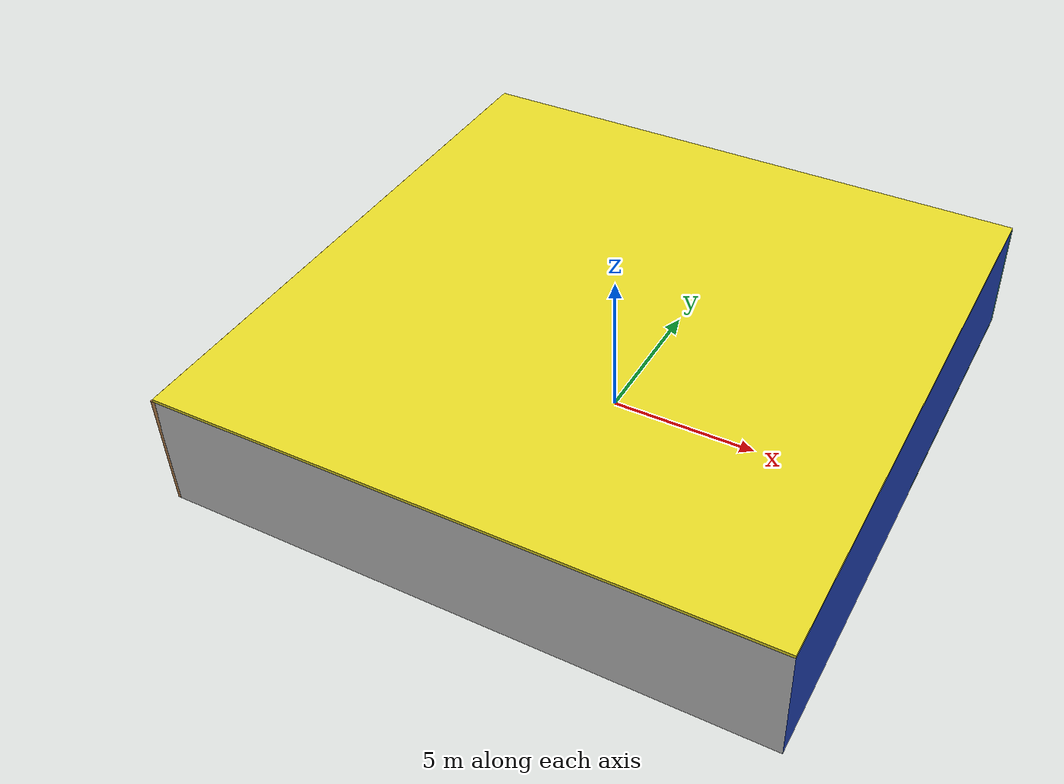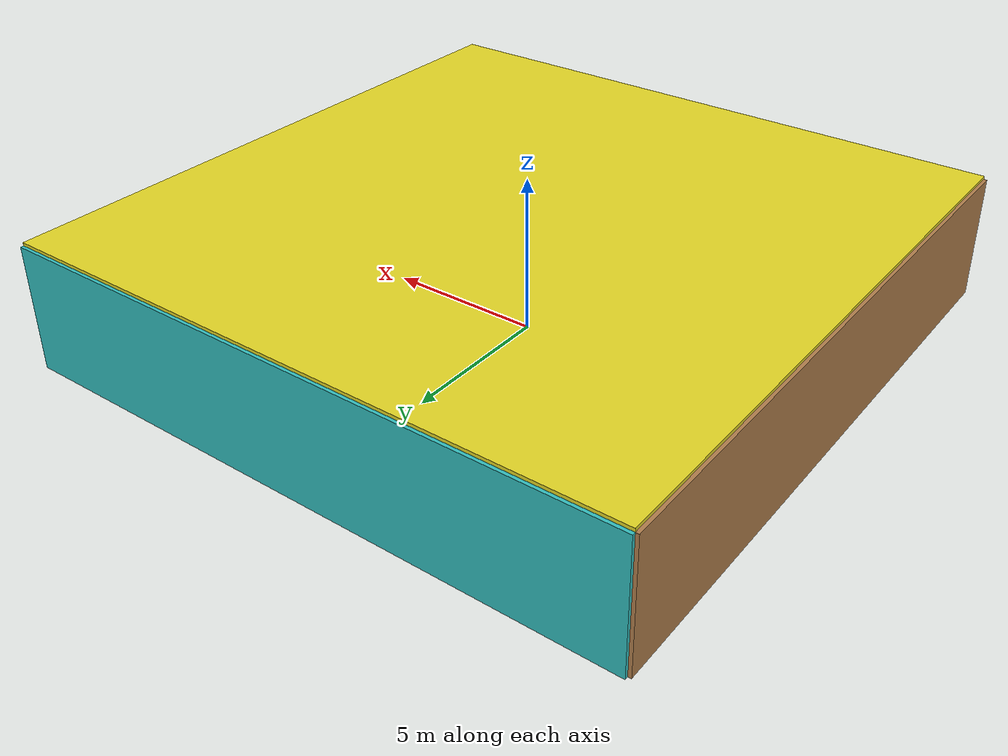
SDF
<sdf version="1.4">
 <world name="default">
  <physics type="ode">
   <max_step_size>0.001</max_step_size>
   <real_time_factor>1</real_time_factor>
   <real_time_update_rate>1000</real_time_update_rate>
   <gravity>0 0 -9.8</gravity>
  </physics>
  <scene><ambient>0.4 0.4 0.4 1</ambient><background>0.7 0.7 0.7 1</background><shadows>1</shadows></scene>
  <model name="Surrounding">
   <static>1</static>
   <link name="Ceiling">
    <collision name="Ceiling_Collision"><geometry><box><size>20 20 0.1</size></box></geometry></collision>
    <visual name="Ceiling_Visual">
     <geometry><box><size>20 20 0.1</size></box></geometry>
     <material>
      <script><uri>file://media/materials/scripts/gazebo.material</uri><name>Gazebo/Yellow</name></script>
     </material>
    </visual>
    <pose>0 0 4.05 0 0 0</pose>
   </link>
   <link name="Wall_South">
    <collision name="Wall_South_Collision">
     <geometry><box><size>20 0 4</size></box></geometry>
     <pose>0 0 2 0 -0 0</pose>
    </collision>
    <visual name="Wall_South_Visual">
     <pose>0 0 2 0 -0 0</pose>
     <geometry><box><size>20 0 4</size></box></geometry>
     <material>
      <script><uri>file://media/materials/scripts/gazebo.material</uri><name>Gazebo/LightOn</name></script>
     </material>
    </visual>
    <velocity_decay><linear>0</linear><angular>0</angular></velocity_decay>
    <pose>0 -10 0 0 -0 0</pose>
   </link>
   <link name="Wall_East">
    <collision name="Wall_21_Collision">
     <geometry><box><size>20 0 4</size></box></geometry>
     <pose>0 0 2 0 -0 0</pose>
    </collision>
    <visual name="Wall_21_Visual">
     <pose>0 0 2 0 -0 0</pose>
     <geometry><box><size>20 0 4</size></box></geometry>
     <material>
      <script><uri>file://media/materials/scripts/gazebo.material</uri><name>Gazebo/Blue</name></script>
     </material>
    </visual>
    <velocity_decay><linear>0</linear><angular>0</angular></velocity_decay>
    <pose>10 0 0 0 -0 1.5708</pose>
   </link>
   <link name="Wall_North">
    <collision name="Wall_22_Collision">
     <geometry><box><size>20 0.2 4</size></box></geometry>
     <pose>0 0 2 0 -0 0</pose>
    </collision>
    <visual name="Wall_22_Visual">
     <pose>0 0 2 0 -0 0</pose>
     <geometry><box><size>20 0.2 4</size></box></geometry>
     <material>
      <script><uri>file://media/materials/scripts/gazebo.material</uri><name>Gazebo/TurquoiseGlow</name></script>
     </material>
    </visual>
    <velocity_decay><linear>0</linear><angular>0</angular></velocity_decay>
    <pose>0 10 0 0 -0 0</pose>
   </link>
   <link name="Wall_West">
    <collision name="Wall_23_Collision">
     <geometry><box><size>20 0.2 4</size></box></geometry>
     <pose>0 0 2 0 -0 0</pose>
    </collision>
    <visual name="Wall_23_Visual">
     <pose>0 0 2 0 -0 0</pose>
     <geometry><box><size>20 0.2 4</size></box></geometry>
     <material>
      <script><uri>file://media/materials/scripts/gazebo.material</uri><name>Gazebo/Wood</name></script>
     </material>
    </visual>
    <velocity_decay><linear>0</linear><angular>0</angular></velocity_decay>
    <pose>-10 0 0 0 0 -1.5708</pose>
   </link>
   <link name="Ground_link">
    <collision name="collision">
     <pose>0 0 .05 0 -0 0</pose>
     <geometry><box><size>20 20 0.1</size></box></geometry>
    </collision>
    <visual name="visual">
     <pose>0 0 .05 0 -0 0</pose>
     <geometry><box><size>20 20 0.1</size></box></geometry>
     <material>
      <script><uri>file://media/materials/scripts/gazebo.material</uri><name>Gazebo/GreenTransparent</name></script>
     </material>
    </visual>
   </link>
   <static>1</static>
  </model>
  <spherical_coordinates>
   <surface_model>EARTH_WGS84</surface_model>
   <latitude_deg>0</latitude_deg>
   <longitude_deg>0</longitude_deg>
   <elevation>0</elevation>
   <heading_deg>0</heading_deg>
  </spherical_coordinates>
  <light name="lightball_0" type="diffuse">
   <diffuse>0.8 0.8 0.8 1</diffuse>
   <specular>0.2 0.2 0.2 1</specular>
   <attenuation>
    <range>100</range>
    <constant>0.7</constant>
    <linear>0.01</linear>
    <quadratic>0.001</quadratic>
   </attenuation>
   <direction>-0.5 0.1 -0.9</direction>
   <pose>-8.38035545458 -2.27887581887 1.6768939226 0 0 0</pose>
  </light>
  <light name="lightball_1" type="diffuse">
   <diffuse>0.8 0.8 0.8 1</diffuse>
   <specular>0.2 0.2 0.2 1</specular>
   <attenuation>
    <range>100</range>
    <constant>0.7</constant>
    <linear>0.01</linear>
    <quadratic>0.001</quadratic>
   </attenuation>
   <direction>-0.5 0.1 -0.9</direction>
   <pose>7.75335989374 3.12265583042 3.45151004831 0 0 0</pose>
  </light>
  <light name="lightball_2" type="diffuse">
   <diffuse>0.8 0.8 0.8 1</diffuse>
   <specular>0.2 0.2 0.2 1</specular>
   <attenuation>
    <range>100</range>
    <constant>0.7</constant>
    <linear>0.01</linear>
    <quadratic>0.001</quadratic>
   </attenuation>
   <direction>-0.5 0.1 -0.9</direction>
   <pose>1.21892426313 -1.73992439381 3.54033984625 0 0 0</pose>
  </light>
  <light name="lightball_3" type="diffuse">
   <diffuse>0.8 0.8 0.8 1</diffuse>
   <specular>0.2 0.2 0.2 1</specular>
   <attenuation>
    <range>100</range>
    <constant>0.7</constant>
    <linear>0.01</linear>
    <quadratic>0.001</quadratic>
   </attenuation>
   <direction>-0.5 0.1 -0.9</direction>
   <pose>-1.10424686926 -4.79500727787 0.569668915004 0 0 0</pose>
  </light>
  <include><uri>model://cabinet</uri><pose>-7.75802491182 1.01468261508 0 0 0 1.5812449388</pose></include>
  <include><uri>model://cabinet</uri><pose>-3.83750837893 5.28467872527 0 0 0 1.65612954965</pose></include>
  <include>
   <uri>model://robocup_3Dsim_goal</uri>
   <pose>-1.28654535139 -7.21269855393 0 0 0 1.80942768447</pose>
  </include>
  <include>
   <uri>model://construction_cone</uri>
   <pose>-1.28326208532 4.94188858092 0 0 0 2.96699885351</pose>
  </include>
  <include>
   <uri>model://robocup_3Dsim_goal</uri>
   <pose>-1.61846144014 7.19751092973 0 0 0 0.0317638535593</pose>
  </include>
  <include>
   <uri>model://robocup_3Dsim_goal</uri>
   <pose>4.07285715866 -7.72283824052 0 0 0 2.01412531954</pose>
  </include>
  <include><uri>model://table</uri><pose>5.13340380476 4.56588779757 0 0 0 1.92879700751</pose></include>
  <include><uri>model://table</uri><pose>7.9744134707 -7.14992880166 0 0 0 0.125112142988</pose></include>
 </world>
</sdf>

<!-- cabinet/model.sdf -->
<sdf version="1.5">
  <model name="cabinet">
    <static>true</static>
    <link name="cabinet_bottom_plate">
      <inertial>
        <pose>0 0 -1 0 0 0</pose>
        <inertia>
          <ixx>2.050000</ixx>
          <ixy>0</ixy>
          <ixz>0</ixz>
          <iyy>2.050000</iyy>
          <iyz>0</iyz>
          <izz>2.050000</izz>
        </inertia>
        <mass>25.000000</mass>
      </inertial>
      <collision name="cabinet_bottom_plate_geom">
        <pose>0 0 0.010000 0 0 0</pose>
        <geometry>
          <box>
            <size>0.450000 0.450000 0.020000</size>
          </box>
        </geometry>
      </collision>
      <visual name="cabinet_bottom_plate_geom_visual">
        <pose>0 0 0.010000 0 0 0</pose>
        <geometry>
          <box>
            <size>0.450000 0.450000 0.020000</size>
          </box>
        </geometry>
        <material>
          <script>
            <uri>model://media/materials/scripts/gazebo.material</uri>
            <name>Gazebo/Wood</name>
          </script>
        </material>
      </visual>
      <collision name="cabinet_bottom_plate_geom_cabinet_back_plate">
        <pose>0.235000 0 0.510000 0 0 0</pose>
        <geometry>
          <box>
            <size>0.020000 0.450000 1.020000</size>
          </box>
        </geometry>
      </collision>
      <visual name="cabinet_bottom_plate_geom_cabinet_back_plate_visual">
        <pose>0.235000 0 0.510000 0 0 0</pose>
        <geometry>
          <box>
            <size>0.020000 0.450000 1.020000</size>
          </box>
        </geometry>
        <material>
          <script>
            <uri>model://media/materials/scripts/gazebo.material</uri>
            <name>Gazebo/Wood</name>
          </script>
        </material>
      </visual>
      <collision name="cabinet_bottom_plate_geom_cabinet_left_plate">
        <pose>0 0.235000 0.510000 0 0 0</pose>
        <geometry>
          <box>
            <size>0.450000 0.020000 1.020000</size>
          </box>
        </geometry>
      </collision>
      <visual name="cabinet_bottom_plate_geom_cabinet_left_plate_visual">
        <pose>0 0.235000 0.510000 0 0 0</pose>
        <geometry>
          <box>
            <size>0.450000 0.020000 1.020000</size>
          </box>
        </geometry>
        <material>
          <script>
            <uri>model://media/materials/scripts/gazebo.material</uri>
            <name>Gazebo/Wood</name>
          </script>
        </material>
      </visual>
      <collision name="cabinet_bottom_plate_geom_cabinet_middle_plate">
        <pose>0 0 0.510000 0 0 0</pose>
        <geometry>
          <box>
            <size>0.450000 0.450000 0.020000</size>
          </box>
        </geometry>
      </collision>
      <visual name="cabinet_bottom_plate_geom_cabinet_middle_plate_visual">
        <pose>0 0 0.510000 0 0 0</pose>
        <geometry>
          <box>
            <size>0.450000 0.450000 0.020000</size>
          </box>
        </geometry>
        <material>
          <script>
            <uri>model://media/materials/scripts/gazebo.material</uri>
            <name>Gazebo/Wood</name>
          </script>
        </material>
      </visual>
      <collision name="cabinet_bottom_plate_geom_cabinet_right_plate">
        <pose>0 -0.235000 0.510000 0 0 0</pose>
        <geometry>
          <box>
            <size>0.450000 0.020000 1.020000</size>
          </box>
        </geometry>
      </collision>
      <visual name="cabinet_bottom_plate_geom_cabinet_right_plate_visual">
        <pose>0 -0.235000 0.510000 0 0 0</pose>
        <geometry>
          <box>
            <size>0.450000 0.020000 1.020000</size>
          </box>
        </geometry>
        <material>
          <script>
            <uri>model://media/materials/scripts/gazebo.material</uri>
            <name>Gazebo/Wood</name>
          </script>
        </material>
      </visual>
      <collision name="cabinet_bottom_plate_geom_cabinet_top_plate">
        <pose>0 0 1.010000 0 0 0</pose>
        <geometry>
          <box>
            <size>0.450000 0.450000 0.020000</size>
          </box>
        </geometry>
      </collision>
      <visual name="cabinet_bottom_plate_geom_cabinet_top_plate_visual">
        <pose>0 0 1.010000 0 0 0</pose>
        <geometry>
          <box>
            <size>0.450000 0.450000 0.020000</size>
          </box>
        </geometry>
        <material>
          <script>
            <uri>model://media/materials/scripts/gazebo.material</uri>
            <name>Gazebo/Wood</name>
          </script>
        </material>
      </visual>
    </link>
  </model>
</sdf>

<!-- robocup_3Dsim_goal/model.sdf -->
<sdf version="1.5">
  <model name="robocup_3d_goal">
    <static>true</static>
    <link name="left_post">
      <pose>0 1.05 0.45 0 0 0</pose>
      <collision name="collision">
        <geometry>
          <cylinder>
            <radius>0.05</radius>
            <length>0.9</length>
          </cylinder>
        </geometry>
      </collision>
      <visual name="visual">
        <geometry>
          <cylinder>
            <radius>0.05</radius>
            <length>0.9</length>
          </cylinder>
        </geometry>
        <material>
          <script>
            <uri>file://media/materials/scripts/gazebo.material</uri>
            <name>Gazebo/ZincYellow</name>
          </script>
        </material>
      </visual>
    </link>
    <link name="left_support_horiz_lower">
      <pose>0.30 1.05 0.01 0 0 0</pose>
      <collision name="collision">
        <geometry>
          <box>
            <size>0.50 0.02 0.02</size>
          </box>
        </geometry>
      </collision>
      <visual name="visual">
        <geometry>
          <box>
            <size>0.50 0.02 0.02</size>
          </box>
        </geometry>
        <material>
          <script>
            <uri>file://media/materials/scripts/gazebo.material</uri>
            <name>Gazebo/White</name>
          </script>
        </material>
      </visual>
    </link>
    <link name="left_support_horiz_upper">
      <pose>0.30 1.05 0.79 0 0 0</pose>
      <collision name="collision">
        <geometry>
          <box>
            <size>0.50 0.02 0.02</size>
          </box>
        </geometry>
      </collision>
      <visual name="visual">
        <geometry>
          <box>
            <size>0.50 0.02 0.02</size>
          </box>
        </geometry>
        <material>
          <script>
            <uri>file://media/materials/scripts/gazebo.material</uri>
            <name>Gazebo/White</name>
          </script>
        </material>
      </visual>
    </link>
    <link name="left_support_vertical">
      <pose>0.56 1.05 0.4 0 1.5708 0</pose>
      <collision name="collision">
        <geometry>
          <box>
            <size>0.80 0.02 0.02</size>
          </box>
        </geometry>
      </collision>
      <visual name="visual">
        <geometry>
          <box>
            <size>0.80 0.02 0.02</size>
          </box>
        </geometry>
        <material>
          <script>
            <uri>file://media/materials/scripts/gazebo.material</uri>
            <name>Gazebo/White</name>
          </script>
        </material>
      </visual>
    </link>
    <link name="right_support_horiz_lower">
      <pose>0.30 -1.05 0.01 0 0 0</pose>
      <collision name="collision">
        <geometry>
          <box>
            <size>0.50 0.02 0.02</size>
          </box>
        </geometry>
      </collision>
      <visual name="visual">
        <geometry>
          <box>
            <size>0.50 0.02 0.02</size>
          </box>
        </geometry>
        <material>
          <script>
            <uri>file://media/materials/scripts/gazebo.material</uri>
            <name>Gazebo/White</name>
          </script>
        </material>
      </visual>
    </link>
    <link name="right_support_horiz_upper">
      <pose>0.30 -1.05 0.79 0 0 0</pose>
      <collision name="collision">
        <geometry>
          <box>
            <size>0.50 0.02 0.02</size>
          </box>
        </geometry>
      </collision>
      <visual name="visual">
        <geometry>
          <box>
            <size>0.50 0.02 0.02</size>
          </box>
        </geometry>
        <material>
          <script>
            <uri>file://media/materials/scripts/gazebo.material</uri>
            <name>Gazebo/White</name>
          </script>
        </material>
      </visual>
    </link>
    <link name="right_support_vertical">
      <pose>0.56 -1.05 0.4 0 1.5708 0</pose>
      <collision name="collision">
        <geometry>
          <box>
            <size>0.80 0.02 0.02</size>
          </box>
        </geometry>
      </collision>
      <visual name="visual">
        <geometry>
          <box>
            <size>0.80 0.02 0.02</size>
          </box>
        </geometry>
        <material>
          <script>
            <uri>file://media/materials/scripts/gazebo.material</uri>
            <name>Gazebo/White</name>
          </script>
        </material>
      </visual>
    </link>
    <link name="center_support_horiz_lower">
      <pose>0.56 0 0.01 0 1.5708 0</pose>
      <collision name="collision">
        <geometry>
          <box>
            <size>0.02 2.08 0.02</size>
          </box>
        </geometry>
      </collision>
      <visual name="visual">
        <geometry>
          <box>
            <size>0.02 2.08 0.02</size>
          </box>
        </geometry>
        <material>
          <script>
            <uri>file://media/materials/scripts/gazebo.material</uri>
            <name>Gazebo/White</name>
          </script>
        </material>
      </visual>
    </link>
    <link name="center_support_horiz_upper">
      <pose>0.56 0 0.79 0 1.5708 0</pose>
      <collision name="collision">
        <geometry>
          <box>
            <size>0.02 2.08 0.02</size>
          </box>
        </geometry>
      </collision>
      <visual name="visual">
        <geometry>
          <box>
            <size>0.02 2.08 0.02</size>
          </box>
        </geometry>
        <material>
          <script>
            <uri>file://media/materials/scripts/gazebo.material</uri>
            <name>Gazebo/White</name>
          </script>
        </material>
      </visual>
    </link>
    <link name="right_post">
      <pose>0 -1.05 0.45 0 0 0</pose>
      <collision name="collision">
        <geometry>
          <cylinder>
            <radius>0.05</radius>
            <length>0.9</length>
          </cylinder>
        </geometry>
      </collision>
      <visual name="visual">
        <geometry>
          <cylinder>
            <radius>0.05</radius>
            <length>0.9</length>
          </cylinder>
        </geometry>
        <material>
          <script>
            <uri>file://media/materials/scripts/gazebo.material</uri>
            <name>Gazebo/ZincYellow</name>
          </script>
        </material>
      </visual>
    </link>
    <link name="crossbar">
      <pose>0 0 0.85 1.57 1.57 0</pose>
      <collision name="collision">
        <geometry>
          <cylinder>
            <radius>0.05</radius>
            <length>2.0</length>
          </cylinder>
        </geometry>
      </collision>
      <visual name="visual">
        <geometry>
          <cylinder>
            <radius>0.05</radius>
            <length>2.0</length>
          </cylinder>
        </geometry>
        <material>
          <script>
            <uri>file://media/materials/scripts/gazebo.material</uri>
            <name>Gazebo/ZincYellow</name>
          </script>
        </material>
      </visual>
    </link>
    <link name="center_net">
      <pose>0.56 0 0.40 0 0 0</pose>
      <collision name="collision">
        <geometry>
          <box>
            <size>0.01 2.1 0.80</size>
          </box>
        </geometry>
      </collision>
      <visual name="visual">
        <geometry>
          <box>
            <size>0.01 2.1 0.80</size>
          </box>
        </geometry>
        <material>
          <script>
            <uri>model://../model_source/models/robocup09_spl_field/materials/scripts/</uri>
            <uri>model://../model_source/models/robocup09_spl_field/materials/textures/</uri>
            <name>RoboCup/Net</name>
          </script>
        </material>
      </visual>
    </link>
    <link name="left_net">
      <pose>0.30 1.05 0.40 0 0 0</pose>
      <collision name="collision">
        <geometry>
          <box>
            <size>0.50 0.01 0.76</size>
          </box>
        </geometry>
      </collision>
      <visual name="visual">
        <geometry>
          <box>
            <size>0.50 0.01 0.76</size>
          </box>
        </geometry>
        <material>
          <script>
            <uri>model://../model_source/models/robocup09_spl_field/materials/scripts/</uri>
            <uri>model://../model_source/models/robocup09_spl_field/materials/textures/</uri>
            <name>RoboCup/Net</name>
          </script>
        </material>
      </visual>
    </link>
    <link name="right_net">
      <pose>0.30 -1.05 0.40 0 0 0</pose>
      <collision name="collision">
        <geometry>
          <box>
            <size>0.50 0.01 0.76</size>
          </box>
        </geometry>
      </collision>
      <visual name="visual">
        <geometry>
          <box>
            <size>0.50 0.01 0.76</size>
          </box>
        </geometry>
        <material>
          <script>
            <uri>model://../model_source/models/robocup09_spl_field/materials/scripts/</uri>
            <uri>model://../model_source/models/robocup09_spl_field/materials/textures/</uri>
            <name>RoboCup/Net</name>
          </script>
        </material>
      </visual>
    </link>
  </model>
</sdf>

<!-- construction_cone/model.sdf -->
<sdf version="1.5">
  <model name="Construction Cone">
    <link name="link">
      <collision name="collision">
        <geometry>
          <mesh>
            <scale>10 10 10</scale>
            <uri>file://isr-testbed/construction_cone/meshes/construction_cone.dae</uri>
          </mesh>
        </geometry>
      </collision>
      <visual name="visual">
        <geometry>
          <mesh>
            <scale>10 10 10</scale>
            <uri>file://isr-testbed/construction_cone/meshes/construction_cone.dae</uri>
          </mesh>
        </geometry>
      </visual>
    </link>
  </model>
</sdf>

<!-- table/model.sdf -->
<sdf version="1.5">
  <model name="table">
    <static>true</static>
    <link name="link">
      <collision name="surface">
        <pose>0 0 1.0 0 0 0</pose>
        <geometry>
          <box>
            <size>1.5 0.8 0.03</size>
          </box>
        </geometry>
        <surface>
          <friction>
            <ode>
              <mu>0.6</mu>
              <mu2>0.6</mu2>
            </ode>
          </friction>
        </surface>
      </collision>
      <visual name="visual1">
        <pose>0 0 1.0 0 0 0</pose>
        <geometry>
          <box>
            <size>1.5 0.8 0.03</size>
          </box>
        </geometry>
        <material>
          <script>
            <uri>model://media/materials/scripts/gazebo.material</uri>
            <name>Gazebo/Wood</name>
          </script>
        </material>
      </visual>
      <collision name="front_left_leg">
        <pose>0.68 0.38 0.5 0 0 0</pose>
        <geometry>
          <cylinder>
            <radius>0.02</radius>
            <length>1.0</length>
          </cylinder>
        </geometry>
      </collision>
      <visual name="front_left_leg">
        <pose>0.68 0.38 0.5 0 0 0</pose>
        <geometry>
          <cylinder>
            <radius>0.02</radius>
            <length>1.0</length>
          </cylinder>
        </geometry>
        <material>
          <script>
            <uri>model://media/materials/scripts/gazebo.material</uri>
            <name>Gazebo/Grey</name>
          </script>
        </material>
      </visual>
      <collision name="front_right_leg">
        <pose>0.68 -0.38 0.5 0 0 0</pose>
        <geometry>
          <cylinder>
            <radius>0.02</radius>
            <length>1.0</length>
          </cylinder>
        </geometry>
      </collision>
      <visual name="front_right_leg">
        <pose>0.68 -0.38 0.5 0 0 0</pose>
        <geometry>
          <cylinder>
            <radius>0.02</radius>
            <length>1.0</length>
          </cylinder>
        </geometry>
        <material>
          <script>
            <uri>model://media/materials/scripts/gazebo.material</uri>
            <name>Gazebo/Grey</name>
          </script>
        </material>
      </visual>
      <collision name="back_right_leg">
        <pose>-0.68 -0.38 0.5 0 0 0</pose>
        <geometry>
          <cylinder>
            <radius>0.02</radius>
            <length>1.0</length>
          </cylinder>
        </geometry>
      </collision>
      <visual name="back_right_leg">
        <pose>-0.68 -0.38 0.5 0 0 0</pose>
        <geometry>
          <cylinder>
            <radius>0.02</radius>
            <length>1.0</length>
          </cylinder>
        </geometry>
        <material>
          <script>
            <uri>model://media/materials/scripts/gazebo.material</uri>
            <name>Gazebo/Grey</name>
          </script>
        </material>
      </visual>
      <collision name="back_left_leg">
        <pose>-0.68 0.38 0.5 0 0 0</pose>
        <geometry>
          <cylinder>
            <radius>0.02</radius>
            <length>1.0</length>
          </cylinder>
        </geometry>
      </collision>
      <visual name="back_left_leg">
        <pose>-0.68 0.38 0.5 0 0 0</pose>
        <geometry>
          <cylinder>
            <radius>0.02</radius>
            <length>1.0</length>
          </cylinder>
        </geometry>
        <material>
          <script>
            <uri>model://media/materials/scripts/gazebo.material</uri>
            <name>Gazebo/Grey</name>
          </script>
        </material>
      </visual>
    </link>
  </model>
</sdf>
